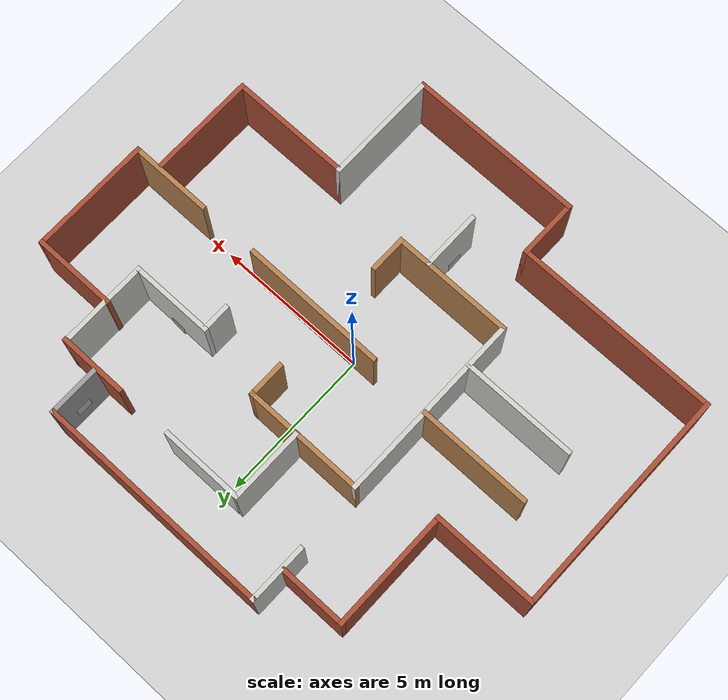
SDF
<sdf version="1.6">
 <world name="default">
  <light name="sun" type="directional">
   <pose>0 0 10 0 -0 0</pose>
   <diffuse>0.8 0.8 0.8 1</diffuse>
   <specular>0.2 0.2 0.2 1</specular>
   <attenuation>
    <range>1000</range>
    <constant>0.9</constant>
    <linear>0.01</linear>
    <quadratic>0.001</quadratic>
   </attenuation>
   <direction>-0.5 0.1 -0.9</direction>
  </light>
  <model name="ground_plane">
   <static>1</static>
   <link name="link">
    <collision name="collision">
     <geometry><plane><normal>0 0 1</normal><size>100 100</size></plane></geometry>
     <surface>
      <contact><collide_bitmask>65535</collide_bitmask></contact>
      <friction><ode><mu>100</mu><mu2>50</mu2></ode></friction>
     </surface>
    </collision>
    <visual name="visual">
     <cast_shadows>0</cast_shadows>
     <geometry><plane><normal>0 0 1</normal><size>100 100</size></plane></geometry>
     <material>
      <script><uri>file://media/materials/scripts/gazebo.material</uri><name>Gazebo/Grey</name></script>
     </material>
    </visual>
   </link>
  </model>
  <gravity>0 0 -9.8</gravity>
  <magnetic_field>6e-06 2.3e-05 -4.2e-05</magnetic_field>
  <atmosphere type="adiabatic"/>
  <physics name="default_physics" default="0" type="ode">
   <max_step_size>0.001</max_step_size>
   <real_time_factor>1</real_time_factor>
   <real_time_update_rate>1000</real_time_update_rate>
  </physics>
  <scene><ambient>0.4 0.4 0.4 1</ambient><background>0.7 0.7 0.7 1</background><shadows>1</shadows></scene>
  <audio><device>default</device></audio>
  <spherical_coordinates>
   <surface_model>EARTH_WGS84</surface_model>
   <latitude_deg>0</latitude_deg>
   <longitude_deg>0</longitude_deg>
   <elevation>0</elevation>
   <heading_deg>0</heading_deg>
  </spherical_coordinates>
  <model name="dat160_w2">
   <link name="Wall_11">
    <collision name="Wall_11_Collision">
     <geometry><box><size>4.77349 0.15 2.5</size></box></geometry>
     <pose>0 0 1.25 0 -0 0</pose>
    </collision>
    <visual name="Wall_11_Visual">
     <pose>0 0 1.25 0 -0 0</pose>
     <geometry><box><size>4.77349 0.15 2.5</size></box></geometry>
     <material>
      <script><uri>file://media/materials/scripts/gazebo.material</uri><name>Gazebo/Wood</name></script>
      <ambient>1 1 1 1</ambient>
     </material>
     <meta><layer>0</layer></meta>
    </visual>
    <pose>1.52891 -0.003828 0 0 -0 -0.004233</pose>
   </link>
   <link name="Wall_3">
    <collision name="Wall_3_Collision">
     <geometry><box><size>4 0.15 2.5</size></box></geometry>
     <pose>0 0 1.25 0 -0 0</pose>
    </collision>
    <visual name="Wall_3_Visual">
     <pose>0 0 1.25 0 -0 0</pose>
     <geometry><box><size>4 0.15 2.5</size></box></geometry>
     <material>
      <script><uri>file://media/materials/scripts/gazebo.material</uri><name>Gazebo/Wood</name></script>
      <ambient>1 1 1 1</ambient>
     </material>
     <meta><layer>0</layer></meta>
    </visual>
    <pose>-0.932632 3.01178 0 0 -0 0</pose>
   </link>
   <link name="Wall_49">
    <collision name="Wall_49_Collision">
     <geometry><box><size>2.5 0.15 2.5</size></box></geometry>
     <pose>0 0 1.25 0 -0 0</pose>
    </collision>
    <visual name="Wall_49_Visual">
     <pose>0 0 1.25 0 -0 0</pose>
     <geometry><box><size>2.5 0.15 2.5</size></box></geometry>
     <material>
      <script><uri>file://media/materials/scripts/gazebo.material</uri><name>Gazebo/CeilingTiled</name></script>
      <ambient>1 1 1 1</ambient>
     </material>
     <meta><layer>0</layer></meta>
    </visual>
    <pose>-0.676416 4.21338 0 0 -0 1.5708</pose>
   </link>
   <link name="Wall_5">
    <collision name="Wall_5_Collision">
     <geometry><box><size>6.25 0.15 2.5</size></box></geometry>
     <pose>0 0 1.25 0 -0 0</pose>
    </collision>
    <visual name="Wall_5_Visual">
     <pose>0 0 1.25 0 -0 0</pose>
     <geometry><box><size>6.25 0.15 2.5</size></box></geometry>
     <material>
      <script><uri>file://media/materials/scripts/gazebo.material</uri><name>Gazebo/CeilingTiled</name></script>
      <ambient>1 1 1 1</ambient>
     </material>
     <meta><layer>0</layer></meta>
    </visual>
    <pose>-2.85763 -0.03822 0 0 -0 -1.5708</pose>
   </link>
   <link name="Wall_50">
    <collision name="Wall_50_Collision">
     <geometry><box><size>2.75 0.15 2.5</size></box></geometry>
     <pose>0 0 1.25 0 -0 0</pose>
    </collision>
    <visual name="Wall_50_Visual">
     <pose>0 0 1.25 0 -0 0</pose>
     <geometry><box><size>2.75 0.15 2.5</size></box></geometry>
     <material>
      <script><uri>file://media/materials/scripts/gazebo.material</uri><name>Gazebo/CeilingTiled</name></script>
      <ambient>1 1 1 1</ambient>
     </material>
     <meta><layer>0</layer></meta>
    </visual>
    <pose>0.623584 5.38838 0 0 -0 0</pose>
   </link>
   <link name="Wall_52">
    <collision name="Wall_52_Collision">
     <geometry><box><size>2.2766 0.15 2.5</size></box></geometry>
     <pose>0 0 1.25 0 -0 0</pose>
    </collision>
    <visual name="Wall_52_Visual">
     <pose>0 0 1.25 0 -0 0</pose>
     <geometry><box><size>2.2766 0.15 2.5</size></box></geometry>
     <material>
      <script><uri>file://media/materials/scripts/gazebo.material</uri><name>Gazebo/Bricks</name></script>
      <ambient>1 1 1 1</ambient>
     </material>
     <meta><layer>0</layer></meta>
    </visual>
    <pose>4.82912 5.4058 0 0 -0 0</pose>
   </link>
   <link name="Wall_53">
    <collision name="Wall_53_Collision">
     <geometry><box><size>3 0.15 2.5</size></box></geometry>
     <pose>0 0 1.25 0 -0 0</pose>
    </collision>
    <visual name="Wall_53_Visual">
     <pose>0 0 1.25 0 -0 0</pose>
     <geometry><box><size>3 0.15 2.5</size></box></geometry>
     <material>
      <script><uri>file://media/materials/scripts/gazebo.material</uri><name>Gazebo/CeilingTiled</name></script>
      <ambient>1 1 1 1</ambient>
     </material>
     <meta><layer>0</layer></meta>
    </visual>
    <pose>5.86582 3.9808 0 0 -0 -1.5708</pose>
   </link>
   <link name="Wall_55">
    <collision name="Wall_55_Collision">
     <geometry><box><size>2.75 0.15 2.5</size></box></geometry>
     <pose>0 0 1.25 0 -0 0</pose>
    </collision>
    <visual name="Wall_55_Visual">
     <pose>0 0 1.25 0 -0 0</pose>
     <geometry><box><size>2.75 0.15 2.5</size></box></geometry>
     <material>
      <script><uri>file://media/materials/scripts/gazebo.material</uri><name>Gazebo/CeilingTiled</name></script>
      <ambient>1 1 1 1</ambient>
     </material>
     <meta><layer>0</layer></meta>
    </visual>
    <pose>4.56582 2.5558 0 0 -0 3.14159</pose>
   </link>
   <link name="Wall_56">
    <collision name="Wall_56_Collision">
     <geometry><box><size>1 0.15 2.5</size></box></geometry>
     <pose>0 0 1.25 0 -0 0</pose>
    </collision>
    <visual name="Wall_56_Visual">
     <pose>0 0 1.25 0 -0 0</pose>
     <geometry><box><size>1 0.15 2.5</size></box></geometry>
     <material>
      <script><uri>file://media/materials/scripts/gazebo.material</uri><name>Gazebo/CeilingTiled</name></script>
      <ambient>1 1 1 1</ambient>
     </material>
     <meta><layer>0</layer></meta>
    </visual>
    <pose>3.26582 2.1308 0 0 -0 -1.5708</pose>
   </link>
   <link name="Wall_58">
    <collision name="Wall_58_Collision">
     <geometry><box><size>1.75 0.15 2.5</size></box></geometry>
     <pose>0 0 1.25 0 -0 0</pose>
    </collision>
    <visual name="Wall_58_Visual">
     <pose>0 0 1.25 0 -0 0</pose>
     <geometry><box><size>1.75 0.15 2.5</size></box></geometry>
     <material>
      <script><uri>file://media/materials/scripts/gazebo.material</uri><name>Gazebo/Grey</name></script>
      <ambient>1 1 1 1</ambient>
     </material>
     <meta><layer>0</layer></meta>
    </visual>
    <pose>4.67022 6.2856 0 0 -0 1.5708</pose>
   </link>
   <link name="Wall_59">
    <collision name="Wall_59_Collision">
     <geometry><box><size>7.75 0.15 2.5</size></box></geometry>
     <pose>0 0 1.25 0 -0 0</pose>
    </collision>
    <visual name="Wall_59_Visual">
     <pose>0 0 1.25 0 -0 0</pose>
     <geometry><box><size>7.75 0.15 2.5</size></box></geometry>
     <material>
      <script><uri>file://media/materials/scripts/gazebo.material</uri><name>Gazebo/Bricks</name></script>
      <ambient>1 1 1 1</ambient>
     </material>
     <meta><layer>0</layer></meta>
    </visual>
    <pose>0.870224 7.0856 0 0 -0 3.14159</pose>
   </link>
   <link name="Wall_6">
    <collision name="Wall_6_Collision">
     <geometry><box><size>4 0.15 2.5</size></box></geometry>
     <pose>0 0 1.25 0 -0 0</pose>
    </collision>
    <visual name="Wall_6_Visual">
     <pose>0 0 1.25 0 -0 0</pose>
     <geometry><box><size>4 0.15 2.5</size></box></geometry>
     <material>
      <script><uri>file://media/materials/scripts/gazebo.material</uri><name>Gazebo/Wood</name></script>
      <ambient>1 1 1 1</ambient>
     </material>
     <meta><layer>0</layer></meta>
    </visual>
    <pose>-0.932632 -3.08822 0 0 -0 0</pose>
   </link>
   <link name="Wall_60">
    <collision name="Wall_60_Collision">
     <geometry><box><size>2 0.15 2.5</size></box></geometry>
     <pose>0 0 1.25 0 -0 0</pose>
    </collision>
    <visual name="Wall_60_Visual">
     <pose>0 0 1.25 0 -0 0</pose>
     <geometry><box><size>2 0.15 2.5</size></box></geometry>
     <material>
      <script><uri>file://media/materials/scripts/gazebo.material</uri><name>Gazebo/CeilingTiled</name></script>
      <ambient>1 1 1 1</ambient>
     </material>
     <meta><layer>0</layer></meta>
    </visual>
    <pose>-2.92978 6.1606 0 0 -0 -1.5708</pose>
   </link>
   <link name="Wall_62">
    <collision name="Wall_62_Collision">
     <geometry><box><size>2.25 0.15 2.5</size></box></geometry>
     <pose>0 0 1.25 0 -0 0</pose>
    </collision>
    <visual name="Wall_62_Visual">
     <pose>0 0 1.25 0 -0 0</pose>
     <geometry><box><size>2.25 0.15 2.5</size></box></geometry>
     <material>
      <script><uri>file://media/materials/scripts/gazebo.material</uri><name>Gazebo/Bricks</name></script>
      <ambient>1 1 1 1</ambient>
     </material>
     <meta><layer>0</layer></meta>
    </visual>
    <pose>-4.04063 5.9644 0 0 -0 3.14159</pose>
   </link>
   <link name="Wall_63">
    <collision name="Wall_63_Collision">
     <geometry><box><size>4 0.15 2.5</size></box></geometry>
     <pose>0 0 1.25 0 -0 0</pose>
    </collision>
    <visual name="Wall_63_Visual">
     <pose>0 0 1.25 0 -0 0</pose>
     <geometry><box><size>4 0.15 2.5</size></box></geometry>
     <material>
      <script><uri>file://media/materials/scripts/gazebo.material</uri><name>Gazebo/Bricks</name></script>
      <ambient>1 1 1 1</ambient>
     </material>
     <meta><layer>0</layer></meta>
    </visual>
    <pose>-5.09063 4.0394 0 0 -0 -1.5708</pose>
   </link>
   <link name="Wall_65">
    <collision name="Wall_65_Collision">
     <geometry><box><size>3.75 0.15 2.5</size></box></geometry>
     <pose>0 0 1.25 0 -0 0</pose>
    </collision>
    <visual name="Wall_65_Visual">
     <pose>0 0 1.25 0 -0 0</pose>
     <geometry><box><size>3.75 0.15 2.5</size></box></geometry>
     <material>
      <script><uri>file://media/materials/scripts/gazebo.material</uri><name>Gazebo/Wood</name></script>
      <ambient>1 1 1 1</ambient>
     </material>
     <meta><layer>0</layer></meta>
    </visual>
    <pose>-4.68423 0.192159 0 0 -0 3.14159</pose>
   </link>
   <link name="Wall_67">
    <collision name="Wall_67_Collision">
     <geometry><box><size>3.5 0.15 2.5</size></box></geometry>
     <pose>0 0 1.25 0 -0 0</pose>
    </collision>
    <visual name="Wall_67_Visual">
     <pose>0 0 1.25 0 -0 0</pose>
     <geometry><box><size>3.5 0.15 2.5</size></box></geometry>
     <material>
      <script><uri>file://media/materials/scripts/gazebo.material</uri><name>Gazebo/Bricks</name></script>
      <ambient>1 1 1 1</ambient>
     </material>
     <meta><layer>0</layer></meta>
    </visual>
    <pose>-6.76563 2.1144 0 0 -0 3.14159</pose>
   </link>
   <link name="Wall_68">
    <collision name="Wall_68_Collision">
     <geometry><box><size>7.5 0.15 2.5</size></box></geometry>
     <pose>0 0 1.25 0 -0 0</pose>
    </collision>
    <visual name="Wall_68_Visual">
     <pose>0 0 1.25 0 -0 0</pose>
     <geometry><box><size>7.5 0.15 2.5</size></box></geometry>
     <material>
      <script><uri>file://media/materials/scripts/gazebo.material</uri><name>Gazebo/Bricks</name></script>
      <ambient>1 1 1 1</ambient>
     </material>
     <meta><layer>0</layer></meta>
    </visual>
    <pose>-8.44063 -1.5606 0 0 -0 -1.5708</pose>
   </link>
   <link name="Wall_7">
    <collision name="Wall_7_Collision">
     <geometry><box><size>1.25 0.15 2.5</size></box></geometry>
     <pose>0 0 1.25 0 -0 0</pose>
    </collision>
    <visual name="Wall_7_Visual">
     <pose>0 0 1.25 0 -0 0</pose>
     <geometry><box><size>1.25 0.15 2.5</size></box></geometry>
     <material>
      <script><uri>file://media/materials/scripts/gazebo.material</uri><name>Gazebo/Wood</name></script>
      <ambient>1 1 1 1</ambient>
     </material>
     <meta><layer>0</layer></meta>
    </visual>
    <pose>0.992368 -2.53822 0 0 -0 1.5708</pose>
   </link>
   <link name="Wall_71">
    <collision name="Wall_71_Collision">
     <geometry><box><size>3.75 0.15 2.5</size></box></geometry>
     <pose>0 0 1.25 0 -0 0</pose>
    </collision>
    <visual name="Wall_71_Visual">
     <pose>0 0 1.25 0 -0 0</pose>
     <geometry><box><size>3.75 0.15 2.5</size></box></geometry>
     <material>
      <script><uri>file://media/materials/scripts/gazebo.material</uri><name>Gazebo/CeilingTiled</name></script>
      <ambient>1 1 1 1</ambient>
     </material>
     <meta><layer>0</layer></meta>
    </visual>
    <pose>-4.70186 -1.64325 0 0 -0 0</pose>
   </link>
   <link name="Wall_75">
    <collision name="Wall_75_Collision">
     <geometry><box><size>6.75 0.15 2.5</size></box></geometry>
     <pose>0 0 1.25 0 -0 0</pose>
    </collision>
    <visual name="Wall_75_Visual">
     <pose>0 0 1.25 0 -0 0</pose>
     <geometry><box><size>6.75 0.15 2.5</size></box></geometry>
     <material>
      <script><uri>file://media/materials/scripts/gazebo.material</uri><name>Gazebo/Bricks</name></script>
      <ambient>1 1 1 1</ambient>
     </material>
     <meta><layer>0</layer></meta>
    </visual>
    <pose>-5.14063 -5.2356 0 0 -0 0</pose>
   </link>
   <link name="Wall_76">
    <collision name="Wall_76_Collision">
     <geometry><box><size>2 0.15 2.5</size></box></geometry>
     <pose>0 0 1.25 0 -0 0</pose>
    </collision>
    <visual name="Wall_76_Visual">
     <pose>0 0 1.25 0 -0 0</pose>
     <geometry><box><size>2 0.15 2.5</size></box></geometry>
     <material>
      <script><uri>file://media/materials/scripts/gazebo.material</uri><name>Gazebo/Bricks</name></script>
      <ambient>1 1 1 1</ambient>
     </material>
     <meta><layer>0</layer></meta>
    </visual>
    <pose>-1.84063 -6.1606 0 0 -0 -1.5708</pose>
   </link>
   <link name="Wall_77">
    <collision name="Wall_77_Collision">
     <geometry><box><size>5.75 0.15 2.5</size></box></geometry>
     <pose>0 0 1.25 0 -0 0</pose>
    </collision>
    <visual name="Wall_77_Visual">
     <pose>0 0 1.25 0 -0 0</pose>
     <geometry><box><size>5.75 0.15 2.5</size></box></geometry>
     <material>
      <script><uri>file://media/materials/scripts/gazebo.material</uri><name>Gazebo/Bricks</name></script>
      <ambient>1 1 1 1</ambient>
     </material>
     <meta><layer>0</layer></meta>
    </visual>
    <pose>0.959367 -7.0856 0 0 -0 0</pose>
   </link>
   <link name="Wall_78">
    <collision name="Wall_78_Collision">
     <geometry><box><size>3.75 0.15 2.5</size></box></geometry>
     <pose>0 0 1.25 0 -0 0</pose>
    </collision>
    <visual name="Wall_78_Visual">
     <pose>0 0 1.25 0 -0 0</pose>
     <geometry><box><size>3.75 0.15 2.5</size></box></geometry>
     <material>
      <script><uri>file://media/materials/scripts/gazebo.material</uri><name>Gazebo/CeilingTiled</name></script>
      <ambient>1 1 1 1</ambient>
     </material>
     <meta><layer>0</layer></meta>
    </visual>
    <pose>3.75937 -5.2856 0 0 -0 1.5708</pose>
   </link>
   <link name="Wall_79">
    <collision name="Wall_79_Collision">
     <geometry><box><size>4 0.15 2.5</size></box></geometry>
     <pose>0 0 1.25 0 -0 0</pose>
    </collision>
    <visual name="Wall_79_Visual">
     <pose>0 0 1.25 0 -0 0</pose>
     <geometry><box><size>4 0.15 2.5</size></box></geometry>
     <material>
      <script><uri>file://media/materials/scripts/gazebo.material</uri><name>Gazebo/Bricks</name></script>
      <ambient>1 1 1 1</ambient>
     </material>
     <meta><layer>0</layer></meta>
    </visual>
    <pose>5.68437 -3.4856 0 0 -0 0</pose>
   </link>
   <link name="Wall_80">
    <collision name="Wall_80_Collision">
     <geometry><box><size>3.5 0.15 2.5</size></box></geometry>
     <pose>0 0 1.25 0 -0 0</pose>
    </collision>
    <visual name="Wall_80_Visual">
     <pose>0 0 1.25 0 -0 0</pose>
     <geometry><box><size>3.5 0.15 2.5</size></box></geometry>
     <material>
      <script><uri>file://media/materials/scripts/gazebo.material</uri><name>Gazebo/Bricks</name></script>
      <ambient>1 1 1 1</ambient>
     </material>
     <meta><layer>0</layer></meta>
    </visual>
    <pose>7.60937 -1.8106 0 0 -0 1.5708</pose>
   </link>
   <link name="Wall_82">
    <collision name="Wall_82_Collision">
     <geometry><box><size>2 0.15 2.5</size></box></geometry>
     <pose>0 0 1.25 0 -0 0</pose>
    </collision>
    <visual name="Wall_82_Visual">
     <pose>0 0 1.25 0 -0 0</pose>
     <geometry><box><size>2 0.15 2.5</size></box></geometry>
     <material>
      <script><uri>file://media/materials/scripts/gazebo.material</uri><name>Gazebo/CeilingTiled</name></script>
      <ambient>1 1 1 1</ambient>
     </material>
     <meta><layer>0</layer></meta>
    </visual>
    <pose>-0.038011 -4.03127 0 0 -0 -1.5708</pose>
   </link>
   <link name="Wall_84">
    <collision name="Wall_84_Collision">
     <geometry><box><size>2.75 0.15 2.5</size></box></geometry>
     <pose>0 0 1.25 0 -0 0</pose>
    </collision>
    <visual name="Wall_84_Visual">
     <pose>0 0 1.25 0 -0 0</pose>
     <geometry><box><size>2.75 0.15 2.5</size></box></geometry>
     <material>
      <script><uri>file://media/materials/scripts/gazebo.material</uri><name>Gazebo/Bricks</name></script>
      <ambient>1 1 1 1</ambient>
     </material>
     <meta><layer>0</layer></meta>
    </visual>
    <pose>7.14063 3.83639 0 0 -0 0</pose>
   </link>
   <link name="Wall_85">
    <collision name="Wall_85_Collision">
     <geometry><box><size>4 0.15 2.5</size></box></geometry>
     <pose>0 0 1.25 0 -0 0</pose>
    </collision>
    <visual name="Wall_85_Visual">
     <pose>0 0 1.25 0 -0 0</pose>
     <geometry><box><size>4 0.15 2.5</size></box></geometry>
     <material>
      <script><uri>file://media/materials/scripts/gazebo.material</uri><name>Gazebo/Bricks</name></script>
      <ambient>1 1 1 1</ambient>
     </material>
     <meta><layer>0</layer></meta>
    </visual>
    <pose>8.44063 1.91139 0 0 -0 -1.5708</pose>
   </link>
   <link name="Wall_88">
    <collision name="Wall_88_Collision">
     <geometry><box><size>2.75 0.15 2.5</size></box></geometry>
     <pose>0 0 1.25 0 -0 0</pose>
    </collision>
    <visual name="Wall_88_Visual">
     <pose>0 0 1.25 0 -0 0</pose>
     <geometry><box><size>2.75 0.15 2.5</size></box></geometry>
     <material>
      <script><uri>file://media/materials/scripts/gazebo.material</uri><name>Gazebo/Wood</name></script>
      <ambient>1 1 1 1</ambient>
     </material>
     <meta><layer>0</layer></meta>
    </visual>
    <pose>7.14063 -0.013614 0 0 -0 3.14159</pose>
   </link>
   <link name="Wall_9">
    <collision name="Wall_9_Collision">
     <geometry><box><size>1.25 0.15 2.5</size></box></geometry>
     <pose>0 0 1.25 0 -0 0</pose>
    </collision>
    <visual name="Wall_9_Visual">
     <pose>0 0 1.25 0 -0 0</pose>
     <geometry><box><size>1.25 0.15 2.5</size></box></geometry>
     <material>
      <script><uri>file://media/materials/scripts/gazebo.material</uri><name>Gazebo/Wood</name></script>
      <ambient>1 1 1 1</ambient>
     </material>
     <meta><layer>0</layer></meta>
    </visual>
    <pose>0.992368 2.46178 0 0 -0 -1.5708</pose>
   </link>
   <static>1</static>
  </model>
  <model name="Baby">
   <static>1</static>
   <link name="link">
    <visual name="visual"><geometry><mesh><uri>model://baby/meshes/Baby.dae</uri></mesh></geometry></visual>
   </link>
   <pose>4.58854 6.30467 1.23366 -3.14117 0 0</pose>
  </model>
  <model name="Marker3">
   <static>1</static>
   <link name="link">
    <visual name="visual"><geometry><mesh><uri>model://marker3/meshes/Marker3.dae</uri></mesh></geometry></visual>
   </link>
   <pose>-0.115568 -4.25527 0 0 0 -3.14</pose>
  </model>
  <model name="Marker4">
   <static>1</static>
   <link name="link">
    <visual name="visual"><geometry><mesh><uri>model://marker4/meshes/Marker4.dae</uri></mesh></geometry></visual>
   </link>
   <pose>4.5126 2.65493 0.003785 0 0 -1.60336</pose>
  </model>
  <light name="user_point_light_0" type="point">
   <pose>-4.1648 -0.635658 1 0 -0 0</pose>
   <diffuse>0.5 0.5 0.5 1</diffuse>
   <specular>0.1 0.1 0.1 1</specular>
   <attenuation>
    <range>20</range>
    <constant>0.5</constant>
    <linear>0.01</linear>
    <quadratic>0.001</quadratic>
   </attenuation>
   <cast_shadows>0</cast_shadows>
   <direction>0 0 -1</direction>
  </light>
  <light name="user_point_light_1" type="point">
   <pose>-0.997972 -4.22819 1 0 -0 0</pose>
   <diffuse>0.5 0.5 0.5 1</diffuse>
   <specular>0.1 0.1 0.1 1</specular>
   <attenuation>
    <range>20</range>
    <constant>0.5</constant>
    <linear>0.01</linear>
    <quadratic>0.001</quadratic>
   </attenuation>
   <cast_shadows>0</cast_shadows>
   <direction>0 0 -1</direction>
  </light>
  <light name="user_point_light_2" type="point">
   <pose>0.97972 -4.01386 1 0 -0 0</pose>
   <diffuse>0.5 0.5 0.5 1</diffuse>
   <specular>0.1 0.1 0.1 1</specular>
   <attenuation>
    <range>20</range>
    <constant>0.5</constant>
    <linear>0.01</linear>
    <quadratic>0.001</quadratic>
   </attenuation>
   <cast_shadows>0</cast_shadows>
   <direction>0 0 -1</direction>
  </light>
  <light name="user_point_light_3" type="point">
   <pose>4.53912 3.54194 1 0 -0 0</pose>
   <diffuse>0.5 0.5 0.5 1</diffuse>
   <specular>0.1 0.1 0.1 1</specular>
   <attenuation>
    <range>20</range>
    <constant>0.5</constant>
    <linear>0.01</linear>
    <quadratic>0.001</quadratic>
   </attenuation>
   <cast_shadows>0</cast_shadows>
   <direction>0 0 -1</direction>
  </light>
  <light name="user_point_light_4" type="point">
   <pose>3.90249 6.25391 1 0 -0 0</pose>
   <diffuse>0.5 0.5 0.5 1</diffuse>
   <specular>0.1 0.1 0.1 1</specular>
   <attenuation>
    <range>20</range>
    <constant>0.5</constant>
    <linear>0.01</linear>
    <quadratic>0.001</quadratic>
   </attenuation>
   <cast_shadows>0</cast_shadows>
   <direction>0 0 -1</direction>
  </light>
 </world>
</sdf>
